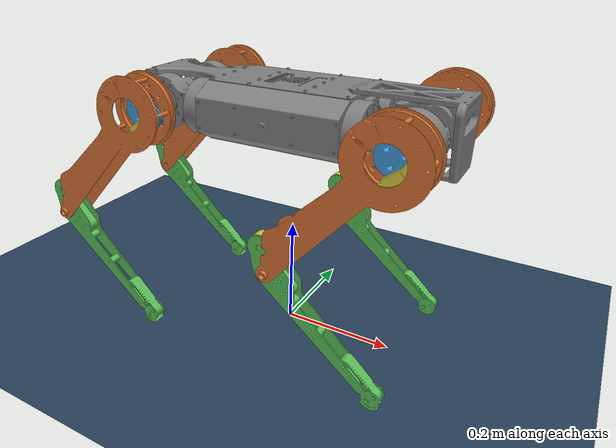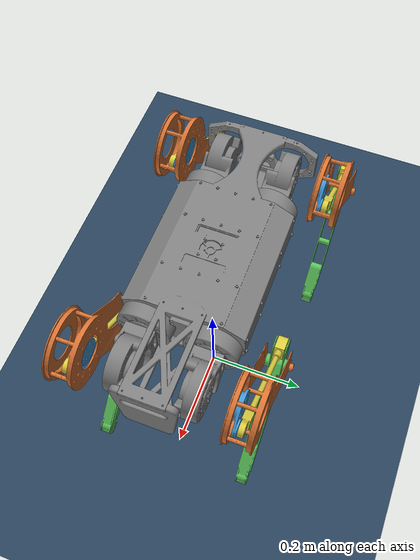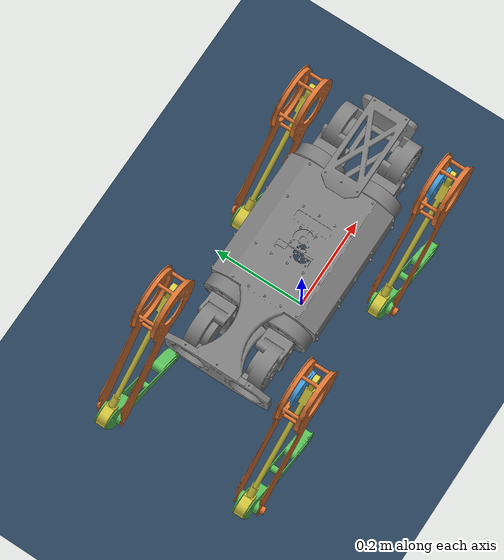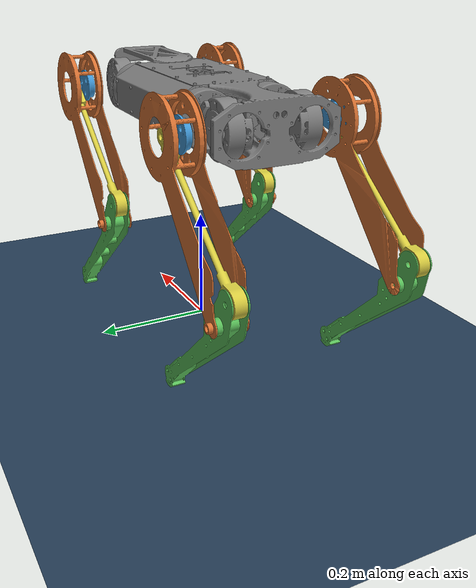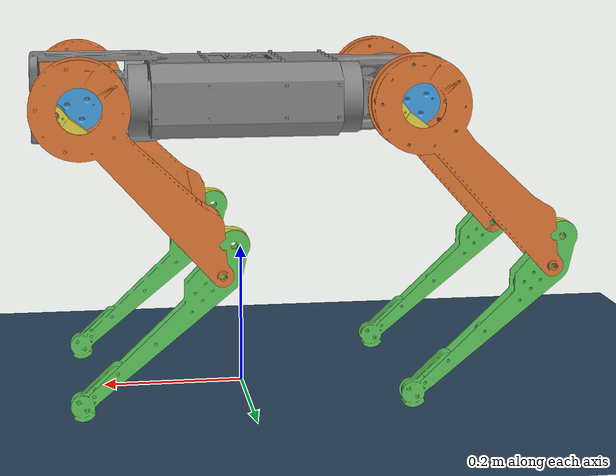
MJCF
<mujoco model="wojtek_mjx_scene">
  <include file="wojtek_mjx.xml"/>
  <statistic center="0 0 0.15" extent="0.8"/>
  <visual>
    <headlight diffuse="0.6 0.6 0.6" ambient="0.3 0.3 0.3" specular="0 0 0"/>
    <global azimuth="120" elevation="-20"/>
  </visual>
  <asset>
    <texture type="skybox" builtin="gradient" rgb1="0.3 0.5 0.7" rgb2="0 0 0" width="512" height="3072"/>
    <texture type="2d" name="groundplane" builtin="checker" mark="edge" rgb1="0.2 0.3 0.4" rgb2="0.1 0.2 0.3" markrgb="0.8 0.8 0.8" width="300" height="300"/>
    <material name="groundplane" texture="groundplane" texuniform="true" texrepeat="5 5" reflectance="0"/>
  </asset>
  <worldbody>
    <geom name="floor" type="plane" size="0 0 0.01" material="groundplane" condim="3" conaffinity="15"/>
    <camera name="track" mode="trackcom" pos="0.9 -1.3 0.5" xyaxes="0.83 0.55 0 -0.15 0.23 0.96"/>
  </worldbody>
</mujoco>

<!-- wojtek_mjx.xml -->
<mujoco model="wojtek_legs_v627">
  <compiler angle="radian" meshdir="../../meshes/"/>

  <option iterations="4" ls_iterations="8"/>

  <size nkey="1"/>

  <default>
    <joint limited="true" armature="0.01" damping="0.3" frictionloss="0.3"/>
    <geom conaffinity="15" condim="4" friction="0.9 0.2 0.2" solref="0.001 2"/>

    <equality solref="0.001 2"/>
    <general ctrllimited="true"/>
    <default class="visual">
      <geom type="mesh" contype="0" conaffinity="0" group="2" density="0" material="grey"/>
    </default>
    <default class="collision">
      <geom type="mesh" group="3"/>
    </default>
  </default>

  <asset>
    <texture type="2d" colorspace="auto" name="grid" builtin="checker" rgb1="0.2 0.3 0.4" rgb2="0.1 0.2 0.3" width="300" height="300"/>
    <material name="grey" rgba="0.5 0.5 0.5 1"/>
    <material name="m_udo" rgba="0.85 0.45 0.2 1"/>
    <material name="m_dzwignia" rgba="0.25 0.6 0.85 1"/>
    <material name="m_wodzik" rgba="0.85 0.8 0.25 1"/>
    <material name="m_golen" rgba="0.35 0.75 0.35 1"/>
    <material name="grid" texture="grid" texrepeat="8 8" reflectance="0.1"/>
    <mesh name="base_link" file="base_link.stl"/>
    <mesh name="first_link" file="first_link.stl"/>
    <mesh name="second_link" file="second_link.stl"/>
    <mesh name="vis_udo_A" file="legs_v627/vis_udo_A.stl"/>
    <mesh name="vis_udo_B" file="legs_v627/vis_udo_B.stl"/>
    <mesh name="vis_dzwignia_A" file="legs_v627/vis_dzwignia_A.stl"/>
    <mesh name="vis_dzwignia_B" file="legs_v627/vis_dzwignia_B.stl"/>
    <mesh name="vis_wodzik_A" file="legs_v627/vis_wodzik_A.stl"/>
    <mesh name="vis_wodzik_B" file="legs_v627/vis_wodzik_B.stl"/>
    <mesh name="vis_golen_A" file="legs_v627/vis_golen_A.stl"/>
    <mesh name="vis_golen_B" file="legs_v627/vis_golen_B.stl"/>
  </asset>

  <worldbody>
    <body name="root" pos="0 0 0.359995">
      <inertial pos="0 0 0" mass="7.54375" diaginertia="0.0223798 0.0789579 0.0887648"/>
      <joint name="root" type="free" armature="0" damping="0" frictionloss="0"/>
      <geom name="base_link_visual" class="visual" pos="0 0 0" quat="0 0 0 1" mesh="base_link"/>
      <geom name="base_link_collision" class="collision" pos="0 0 0" quat="0 0 0 1" contype="0" conaffinity="0" mesh="base_link"/>
      <geom name="rear_left_first_link_visual" class="visual" pos="-0.131 0.06 0.06" quat="0 0 -0.707107 0.707107" mesh="first_link"/>
      <geom name="rear_left_first_link_collision" class="collision" pos="-0.131 0.06 0.06" quat="0 0 -0.707107 0.707107" contype="0" conaffinity="0" mesh="first_link"/>
      <geom name="rear_right_first_link_visual" class="visual" pos="-0.131 -0.06 0.06" quat="0 0 -0.707107 0.707107" mesh="first_link"/>
      <geom name="rear_right_first_link_collision" class="collision" pos="-0.131 -0.06 0.06" quat="0 0 -0.707107 0.707107" contype="0" conaffinity="0" mesh="first_link"/>
      <geom name="front_right_first_link_visual" class="visual" pos="0.131 -0.06 0.06" quat="0.707107 -0.707107 0 0" mesh="first_link"/>
      <geom name="front_right_first_link_collision" class="collision" pos="0.131 -0.06 0.06" quat="0.707107 -0.707107 0 0" contype="0" conaffinity="0" mesh="first_link"/>
      <geom name="front_left_first_link_visual" class="visual" pos="0.131 0.06 0.06" quat="0.707107 -0.707107 0 0" mesh="first_link"/>
      <geom name="front_left_first_link_collision" class="collision" pos="0.131 0.06 0.06" quat="0.707107 -0.707107 0 0" contype="0" conaffinity="0" mesh="first_link"/>
      <geom name="base_box_r0c0" size="0.0278333 0.0261667 0.05" pos="-0.141667 -0.0533333 0" type="box" group="3"/>
      <geom name="base_box_r0c2" size="0.0278333 0.0261667 0.05" pos="-0.0283333 -0.0533333 0" type="box" group="3"/>
      <geom name="base_box_r0c4" size="0.0278333 0.0261667 0.05" pos="0.085 -0.0533333 0" type="box" group="3"/>
      <geom name="base_box_r1c1" size="0.0278333 0.0261667 0.05" pos="-0.085 0 0" type="box" group="3"/>
      <geom name="base_box_r1c3" size="0.0278333 0.0261667 0.05" pos="0.0283333 0 0" type="box" group="3"/>
      <geom name="base_box_r1c5" size="0.0278333 0.0261667 0.05" pos="0.141667 0 0" type="box" group="3"/>
      <geom name="base_box_r2c0" size="0.0278333 0.0261667 0.05" pos="-0.141667 0.0533333 0" type="box" group="3"/>
      <geom name="base_box_r2c2" size="0.0278333 0.0261667 0.05" pos="-0.0283333 0.0533333 0" type="box" group="3"/>
      <geom name="base_box_r2c4" size="0.0278333 0.0261667 0.05" pos="0.085 0.0533333 0" type="box" group="3"/>
      <site name="imu" pos="0 0 0" size="1e-08"/>
      <camera name="ego" pos="0.3 0 0.1" quat="0.541665 0.454532 -0.454532 -0.541665" fovy="100"/>
      <camera name="bench" pos="0.05 0 1.11" quat="-0.5 -0.5 0.5 0.5" fovy="73.74"/>
      <body name="rear_left_second_link" pos="-0.162 0.06 0.06" quat="0 0 0.707107 0.707107">
        <inertial pos="0.055 0 0" quat="0.5 0.5 -0.5 0.5" mass="0.6" diaginertia="0.00075 0.000455 0.000455"/>
        <joint name="rear_left_first_joint" pos="0 0 0" axis="1 0 0" range="-3.1416 3.1416" damping="0.05" frictionloss="0.01"/>
        <geom name="rear_left_second_link_visual" class="visual" mesh="second_link"/>
        <geom name="rear_left_second_link_collision" class="collision" contype="0" conaffinity="0" mesh="second_link"/>
        <geom name="rear_left_second_link_floor" size="0.035" pos="0.055 0 0" contype="2" conaffinity="0" group="3"/>
        <body name="rear_left_third_link" pos="0.064 0 0.0668" quat="-0.904316 0 0 0.426864">
          <inertial pos="0.0394156 0.000858148 0.0250979" quat="-0.00514395 0.703225 0.00750772 0.710909" mass="1.0898" diaginertia="0.00962075 0.00915335 0.00112774"/>
          <joint name="rear_left_second_joint" pos="0 0 0" axis="0 0 -1" ref="-2.25955" range="-2.69479 -1.53589" armature="0.02" damping="0.05" frictionloss="0.2"/>
          <geom name="rear_left_udo_visual" class="visual" material="m_udo" mesh="vis_udo_B"/>
          <geom name="rear_left_third_link_floor" size="0.03 0.144" pos="0.144 0 0.03" quat="0.707107 0 -0.707107 0" type="capsule" contype="2" conaffinity="0" group="3"/>
          <site name="rear_left_P1" pos="0 0 0" size="0.004" group="4"/>
          <body name="rear_left_fourth_link" quat="0.537643 0 0 -0.843173">
            <inertial pos="0.0138922 4.11189e-09 0.0149449" quat="0 0.620173 0 0.784465" mass="0.102018" diaginertia="5.17307e-05 4.64771e-05 1.85064e-05"/>
            <joint name="rear_left_third_joint" pos="0 0 0" axis="0 0 1" ref="-2.00632" range="-2.83267 -0.244346" armature="0.02" damping="0.05" frictionloss="0.2"/>
            <geom name="rear_left_dzwignia_visual" class="visual" material="m_dzwignia" mesh="vis_dzwignia_B"/>
            <body name="rear_left_fifth_link" pos="0.0329881 0 0" quat="0.436064 0 0 0.899916">
              <inertial pos="0.200478 0 0.0255" quat="0 0.707107 0 0.707107" mass="0.07891" diaginertia="0.00115302 0.00114916 7.59801e-06"/>
              <joint name="rear_left_fourth_joint" pos="0 0 0" axis="0 0 -1" ref="-2.23915" limited="false" damping="0.01" frictionloss="0.48"/>
              <geom name="rear_left_wodzik_visual" class="visual" material="m_wodzik" mesh="vis_wodzik_B"/>
              <geom name="rear_left_fifth_link_floor" size="0.012 0.135" pos="0.155 0 0.0255" quat="0.707107 0 -0.707107 0" type="capsule" contype="2" conaffinity="0" group="3"/>
              <site name="rear_left_chain_close_a" pos="0.290953 0 0" group="4"/>
              <body name="rear_left_chain_close_a_link" pos="0.290953 0 0"/>
            </body>
          </body>
          <body name="rear_left_sixth_link" pos="0.288242 0 0" quat="0.521687 0 0 0.853137">
            <inertial pos="-0.0695813 0.0314282 0.0253786" quat="0.597286 0.567265 0.418376 0.382649" mass="0.33083" diaginertia="0.0032533 0.00324266 7.82591e-05"/>
            <joint name="rear_left_fifth_joint" pos="0 0 0" axis="0 0 -1" ref="-2.04394" limited="false" damping="0.01" frictionloss="0"/>
            <geom name="rear_left_golen_visual" class="visual" material="m_golen" mesh="vis_golen_B"/>
            <geom name="rear_left_foot_sphere" size="0.02" pos="-0.237713 0.102244 0.0255" conaffinity="1" group="3"/>
            <geom name="rear_left_sixth_link_floor" size="0.015 0.109969" pos="-0.101 0.0435 0.0255" quat="0.707107 0.279707 0.649434 0" type="capsule" contype="2" conaffinity="0" group="3"/>
            <site name="rear_left_foot" pos="-0.237713 0.102244 0" group="4"/>
            <body name="rear_left_foot_link" pos="0.041823 0 0">
              <inertial pos="0 0 0" mass="0.01" diaginertia="1e-06 1e-06 1e-06"/>
              <joint name="rear_left_foot_joint" pos="0 0 0" axis="0 0 1" limited="false" armature="0.0001" damping="0.01" frictionloss="0"/>
              <site name="rear_left_chain_close_b" pos="0 0 0" group="4"/>
            </body>
          </body>
        </body>
      </body>
      <body name="rear_right_second_link" pos="-0.162 -0.06 0.06" quat="0 0 -0.707107 0.707107">
        <inertial pos="0.055 0 0" quat="0.5 0.5 -0.5 0.5" mass="0.6" diaginertia="0.00075 0.000455 0.000455"/>
        <joint name="rear_right_first_joint" pos="0 0 0" axis="1 0 0" range="-3.1416 3.1416" damping="0.05" frictionloss="0.01"/>
        <geom name="rear_right_second_link_visual" class="visual" mesh="second_link"/>
        <geom name="rear_right_second_link_collision" class="collision" contype="0" conaffinity="0" mesh="second_link"/>
        <geom name="rear_right_second_link_floor" size="0.035" pos="0.055 0 0" contype="2" conaffinity="0" group="3"/>
        <body name="rear_right_third_link" pos="0.064 0 0.0668" quat="0.904316 0 0 0.426864">
          <inertial pos="0.0394156 -0.000858148 0.0250979" quat="0.00514395 0.703225 -0.00750772 0.710909" mass="1.0898" diaginertia="0.00962075 0.00915335 0.00112774"/>
          <joint name="rear_right_second_joint" pos="0 0 0" axis="0 0 1" ref="-2.25955" range="-2.69479 -1.53589" armature="0.02" damping="0.05" frictionloss="0.2"/>
          <geom name="rear_right_udo_visual" class="visual" material="m_udo" mesh="vis_udo_A"/>
          <geom name="rear_right_third_link_floor" size="0.03 0.144" pos="0.144 0 0.03" quat="0.707107 0 -0.707107 0" type="capsule" contype="2" conaffinity="0" group="3"/>
          <site name="rear_right_P1" pos="0 0 0" size="0.004" group="4"/>
          <body name="rear_right_fourth_link" quat="0.537643 0 0 0.843173">
            <inertial pos="0.0138922 -4.11189e-09 0.0149449" quat="0 0.620173 0 0.784465" mass="0.102018" diaginertia="5.17307e-05 4.64771e-05 1.85064e-05"/>
            <joint name="rear_right_third_joint" pos="0 0 0" axis="0 0 -1" ref="-2.00632" range="-2.83267 -0.244346" armature="0.02" damping="0.05" frictionloss="0.2"/>
            <geom name="rear_right_dzwignia_visual" class="visual" material="m_dzwignia" mesh="vis_dzwignia_A"/>
            <body name="rear_right_fifth_link" pos="0.0329881 0 0" quat="0.436064 0 0 -0.899916">
              <inertial pos="0.200478 0 0.0255" quat="0 0.707107 0 0.707107" mass="0.07891" diaginertia="0.00115302 0.00114916 7.59801e-06"/>
              <joint name="rear_right_fourth_joint" pos="0 0 0" axis="0 0 -1" ref="2.23915" limited="false" damping="0.01" frictionloss="0.48"/>
              <geom name="rear_right_wodzik_visual" class="visual" material="m_wodzik" mesh="vis_wodzik_A"/>
              <geom name="rear_right_fifth_link_floor" size="0.012 0.135" pos="0.155 0 0.0255" quat="0.707107 0 -0.707107 0" type="capsule" contype="2" conaffinity="0" group="3"/>
              <site name="rear_right_chain_close_a" pos="0.290953 0 0" group="4"/>
              <body name="rear_right_chain_close_a_link" pos="0.290953 0 0"/>
            </body>
          </body>
          <body name="rear_right_sixth_link" pos="0.288242 0 0" quat="0.521687 0 0 -0.853137">
            <inertial pos="-0.0695813 -0.0314282 0.0253786" quat="0.382649 0.418376 0.567265 0.597286" mass="0.33083" diaginertia="0.0032533 0.00324266 7.82591e-05"/>
            <joint name="rear_right_fifth_joint" pos="0 0 0" axis="0 0 -1" ref="2.04394" limited="false" damping="0.01" frictionloss="0"/>
            <geom name="rear_right_golen_visual" class="visual" material="m_golen" mesh="vis_golen_A"/>
            <geom name="rear_right_foot_sphere" size="0.02" pos="-0.237713 -0.102244 0.0255" conaffinity="1" group="3"/>
            <geom name="rear_right_sixth_link_floor" size="0.015 0.109969" pos="-0.101 -0.0435 0.0255" quat="0.707107 -0.279707 0.649434 0" type="capsule" contype="2" conaffinity="0" group="3"/>
            <site name="rear_right_foot" pos="-0.237713 -0.102244 0" group="4"/>
            <body name="rear_right_foot_link" pos="0.041823 0 0">
              <inertial pos="0 0 0" mass="0.01" diaginertia="1e-06 1e-06 1e-06"/>
              <joint name="rear_right_foot_joint" pos="0 0 0" axis="0 0 1" limited="false" armature="0.0001" damping="0.01" frictionloss="0"/>
              <site name="rear_right_chain_close_b" pos="0 0 0" group="4"/>
            </body>
          </body>
        </body>
      </body>
      <body name="front_right_second_link" pos="0.162 -0.06 0.06" quat="0.707107 0.707107 0 0">
        <inertial pos="0.055 0 0" quat="0.5 0.5 -0.5 0.5" mass="0.6" diaginertia="0.00075 0.000455 0.000455"/>
        <joint name="front_right_first_joint" pos="0 0 0" axis="1 0 0" range="-3.1416 3.1416" damping="0.05" frictionloss="0.01"/>
        <geom name="front_right_second_link_visual" class="visual" mesh="second_link"/>
        <geom name="front_right_second_link_collision" class="collision" contype="0" conaffinity="0" mesh="second_link"/>
        <geom name="front_right_second_link_floor" size="0.035" pos="0.055 0 0" contype="2" conaffinity="0" group="3"/>
        <body name="front_right_third_link" pos="0.064 0 0.0668" quat="0.426864 0 0 -0.904316">
          <inertial pos="0.0394156 -0.000858148 0.0250979" quat="0.00514395 0.703225 -0.00750772 0.710909" mass="1.0898" diaginertia="0.00962075 0.00915335 0.00112774"/>
          <joint name="front_right_second_joint" pos="0 0 0" axis="0 0 -1" ref="2.25955" range="1.53589 2.69479" armature="0.02" damping="0.05" frictionloss="0.2"/>
          <geom name="front_right_udo_visual" class="visual" material="m_udo" mesh="vis_udo_A"/>
          <geom name="front_right_third_link_floor" size="0.03 0.144" pos="0.144 0 0.03" quat="0.707107 0 -0.707107 0" type="capsule" contype="2" conaffinity="0" group="3"/>
          <site name="front_right_P1" pos="0 0 0" size="0.004" group="4"/>
          <body name="front_right_fourth_link" quat="0.537643 0 0 0.843173">
            <inertial pos="0.0138922 -4.11189e-09 0.0149449" quat="0 0.620173 0 0.784465" mass="0.102018" diaginertia="5.17307e-05 4.64771e-05 1.85064e-05"/>
            <joint name="front_right_third_joint" pos="0 0 0" axis="0 0 1" ref="2.00632" range="0.244346 2.83267" armature="0.02" damping="0.05" frictionloss="0.2"/>
            <geom name="front_right_dzwignia_visual" class="visual" material="m_dzwignia" mesh="vis_dzwignia_A"/>
            <body name="front_right_fifth_link" pos="0.0329881 0 0" quat="0.436064 0 0 -0.899916">
              <inertial pos="0.200478 0 0.0255" quat="0 0.707107 0 0.707107" mass="0.07891" diaginertia="0.00115302 0.00114916 7.59801e-06"/>
              <joint name="front_right_fourth_joint" pos="0 0 0" axis="0 0 -1" ref="2.23915" limited="false" damping="0.01" frictionloss="0.48"/>
              <geom name="front_right_wodzik_visual" class="visual" material="m_wodzik" mesh="vis_wodzik_A"/>
              <geom name="front_right_fifth_link_floor" size="0.012 0.135" pos="0.155 0 0.0255" quat="0.707107 0 -0.707107 0" type="capsule" contype="2" conaffinity="0" group="3"/>
              <site name="front_right_chain_close_a" pos="0.290953 0 0" group="4"/>
              <body name="front_right_chain_close_a_link" pos="0.290953 0 0"/>
            </body>
          </body>
          <body name="front_right_sixth_link" pos="0.288242 0 0" quat="0.521687 0 0 -0.853137">
            <inertial pos="-0.0695813 -0.0314282 0.0253786" quat="0.382649 0.418376 0.567265 0.597286" mass="0.33083" diaginertia="0.0032533 0.00324266 7.82591e-05"/>
            <joint name="front_right_fifth_joint" pos="0 0 0" axis="0 0 -1" ref="2.04394" limited="false" damping="0.01" frictionloss="0"/>
            <geom name="front_right_golen_visual" class="visual" material="m_golen" mesh="vis_golen_A"/>
            <geom name="front_right_foot_sphere" size="0.02" pos="-0.237713 -0.102244 0.0255" conaffinity="1" group="3"/>
            <geom name="front_right_sixth_link_floor" size="0.015 0.109969" pos="-0.101 -0.0435 0.0255" quat="0.707107 -0.279707 0.649434 0" type="capsule" contype="2" conaffinity="0" group="3"/>
            <site name="front_right_foot" pos="-0.237713 -0.102244 0" group="4"/>
            <body name="front_right_foot_link" pos="0.041823 0 0">
              <inertial pos="0 0 0" mass="0.01" diaginertia="1e-06 1e-06 1e-06"/>
              <joint name="front_right_foot_joint" pos="0 0 0" axis="0 0 1" limited="false" armature="0.0001" damping="0.01" frictionloss="0"/>
              <site name="front_right_chain_close_b" pos="0 0 0" group="4"/>
            </body>
          </body>
        </body>
      </body>
      <body name="front_left_second_link" pos="0.162 0.06 0.06" quat="0.707107 -0.707107 0 0">
        <inertial pos="0.055 0 0" quat="0.5 0.5 -0.5 0.5" mass="0.6" diaginertia="0.00075 0.000455 0.000455"/>
        <joint name="front_left_first_joint" pos="0 0 0" axis="1 0 0" range="-3.1416 3.1416" damping="0.05" frictionloss="0.01"/>
        <geom name="front_left_second_link_visual" class="visual" mesh="second_link"/>
        <geom name="front_left_second_link_collision" class="collision" contype="0" conaffinity="0" mesh="second_link"/>
        <geom name="front_left_second_link_floor" size="0.035" pos="0.055 0 0" contype="2" conaffinity="0" group="3"/>
        <body name="front_left_third_link" pos="0.064 0 0.0668" quat="0.426864 0 0 0.904316">
          <inertial pos="0.0394156 0.000858148 0.0250979" quat="-0.00514395 0.703225 0.00750772 0.710909" mass="1.0898" diaginertia="0.00962075 0.00915335 0.00112774"/>
          <joint name="front_left_second_joint" pos="0 0 0" axis="0 0 1" ref="2.25955" range="1.53589 2.69479" armature="0.02" damping="0.05" frictionloss="0.2"/>
          <geom name="front_left_udo_visual" class="visual" material="m_udo" mesh="vis_udo_B"/>
          <geom name="front_left_third_link_floor" size="0.03 0.144" pos="0.144 0 0.03" quat="0.707107 0 -0.707107 0" type="capsule" contype="2" conaffinity="0" group="3"/>
          <site name="front_left_P1" pos="0 0 0" size="0.004" group="4"/>
          <body name="front_left_fourth_link" quat="0.537643 0 0 -0.843173">
            <inertial pos="0.0138922 4.11189e-09 0.0149449" quat="0 0.620173 0 0.784465" mass="0.102018" diaginertia="5.17307e-05 4.64771e-05 1.85064e-05"/>
            <joint name="front_left_third_joint" pos="0 0 0" axis="0 0 -1" ref="2.00632" range="0.244346 2.83267" armature="0.02" damping="0.05" frictionloss="0.2"/>
            <geom name="front_left_dzwignia_visual" class="visual" material="m_dzwignia" mesh="vis_dzwignia_B"/>
            <body name="front_left_fifth_link" pos="0.0329881 0 0" quat="0.436064 0 0 0.899916">
              <inertial pos="0.200478 0 0.0255" quat="0 0.707107 0 0.707107" mass="0.07891" diaginertia="0.00115302 0.00114916 7.59801e-06"/>
              <joint name="front_left_fourth_joint" pos="0 0 0" axis="0 0 -1" ref="-2.23915" limited="false" damping="0.01" frictionloss="0.48"/>
              <geom name="front_left_wodzik_visual" class="visual" material="m_wodzik" mesh="vis_wodzik_B"/>
              <geom name="front_left_fifth_link_floor" size="0.012 0.135" pos="0.155 0 0.0255" quat="0.707107 0 -0.707107 0" type="capsule" contype="2" conaffinity="0" group="3"/>
              <site name="front_left_chain_close_a" pos="0.290953 0 0" group="4"/>
              <body name="front_left_chain_close_a_link" pos="0.290953 0 0"/>
            </body>
          </body>
          <body name="front_left_sixth_link" pos="0.288242 0 0" quat="0.521687 0 0 0.853137">
            <inertial pos="-0.0695813 0.0314282 0.0253786" quat="0.597286 0.567265 0.418376 0.382649" mass="0.33083" diaginertia="0.0032533 0.00324266 7.82591e-05"/>
            <joint name="front_left_fifth_joint" pos="0 0 0" axis="0 0 -1" ref="-2.04394" limited="false" damping="0.01" frictionloss="0"/>
            <geom name="front_left_golen_visual" class="visual" material="m_golen" mesh="vis_golen_B"/>
            <geom name="front_left_foot_sphere" size="0.02" pos="-0.237713 0.102244 0.0255" conaffinity="1" group="3"/>
            <geom name="front_left_sixth_link_floor" size="0.015 0.109969" pos="-0.101 0.0435 0.0255" quat="0.707107 0.279707 0.649434 0" type="capsule" contype="2" conaffinity="0" group="3"/>
            <site name="front_left_foot" pos="-0.237713 0.102244 0" group="4"/>
            <body name="front_left_foot_link" pos="0.041823 0 0">
              <inertial pos="0 0 0" mass="0.01" diaginertia="1e-06 1e-06 1e-06"/>
              <joint name="front_left_foot_joint" pos="0 0 0" axis="0 0 1" limited="false" armature="0.0001" damping="0.01" frictionloss="0"/>
              <site name="front_left_chain_close_b" pos="0 0 0" group="4"/>
            </body>
          </body>
        </body>
      </body>
    </body>
  </worldbody>

  <contact>
    <exclude name="ex_rear_left_second_link_root" body1="root" body2="rear_left_second_link"/>
    <exclude name="ex_rear_right_second_link_root" body1="root" body2="rear_right_second_link"/>
    <exclude name="ex_front_right_second_link_root" body1="root" body2="front_right_second_link"/>
    <exclude name="ex_front_left_second_link_root" body1="root" body2="front_left_second_link"/>
    <exclude name="ex_rear_left_fifth_link_sixth_link" body1="rear_left_fifth_link" body2="rear_left_sixth_link"/>
    <exclude name="ex_rear_right_fifth_link_sixth_link" body1="rear_right_fifth_link" body2="rear_right_sixth_link"/>
    <exclude name="ex_front_right_fifth_link_sixth_link" body1="front_right_fifth_link" body2="front_right_sixth_link"/>
    <exclude name="ex_front_left_fifth_link_sixth_link" body1="front_left_fifth_link" body2="front_left_sixth_link"/>
  </contact>

  <equality>
    <connect name="equality_sconstraint_front_left" site1="front_left_chain_close_b" site2="front_left_chain_close_a" solimp="0.99 0.999"/>
    <connect name="equality_sconstraint_front_right" site1="front_right_chain_close_b" site2="front_right_chain_close_a" solimp="0.99 0.999"/>
    <connect name="equality_sconstraint_rear_left" site1="rear_left_chain_close_b" site2="rear_left_chain_close_a" solimp="0.99 0.999"/>
    <connect name="equality_sconstraint_rear_right" site1="rear_right_chain_close_b" site2="rear_right_chain_close_a" solimp="0.99 0.999"/>
  </equality>

  <actuator>
    <general name="rear_left_first_joint" joint="rear_left_first_joint" ctrlrange="-3.1416 3.1416" forcerange="-22 22" biastype="affine" gainprm="60" biasprm="0 -60 -2"/>
    <general name="rear_left_second_joint" joint="rear_left_second_joint" ctrlrange="-2.69479 -1.53589" forcerange="-22 22" biastype="affine" gainprm="60" biasprm="0 -60 -2"/>
    <general name="rear_left_third_joint" joint="rear_left_third_joint" ctrlrange="-2.83267 -0.244346" forcerange="-22 22" biastype="affine" gainprm="60" biasprm="0 -60 -2"/>
    <general name="rear_right_first_joint" joint="rear_right_first_joint" ctrlrange="-3.1416 3.1416" forcerange="-22 22" biastype="affine" gainprm="60" biasprm="0 -60 -2"/>
    <general name="rear_right_second_joint" joint="rear_right_second_joint" ctrlrange="-2.69479 -1.53589" forcerange="-22 22" biastype="affine" gainprm="60" biasprm="0 -60 -2"/>
    <general name="rear_right_third_joint" joint="rear_right_third_joint" ctrlrange="-2.83267 -0.244346" forcerange="-22 22" biastype="affine" gainprm="60" biasprm="0 -60 -2"/>
    <general name="front_right_first_joint" joint="front_right_first_joint" ctrlrange="-3.1416 3.1416" forcerange="-22 22" biastype="affine" gainprm="60" biasprm="0 -60 -2"/>
    <general name="front_right_second_joint" joint="front_right_second_joint" ctrlrange="1.53589 2.69479" forcerange="-22 22" biastype="affine" gainprm="60" biasprm="0 -60 -2"/>
    <general name="front_right_third_joint" joint="front_right_third_joint" ctrlrange="0.244346 2.83267" forcerange="-22 22" biastype="affine" gainprm="60" biasprm="0 -60 -2"/>
    <general name="front_left_first_joint" joint="front_left_first_joint" ctrlrange="-3.1416 3.1416" forcerange="-22 22" biastype="affine" gainprm="60" biasprm="0 -60 -2"/>
    <general name="front_left_second_joint" joint="front_left_second_joint" ctrlrange="1.53589 2.69479" forcerange="-22 22" biastype="affine" gainprm="60" biasprm="0 -60 -2"/>
    <general name="front_left_third_joint" joint="front_left_third_joint" ctrlrange="0.244346 2.83267" forcerange="-22 22" biastype="affine" gainprm="60" biasprm="0 -60 -2"/>
  </actuator>

  <sensor>

    <actuatorpos actuator="rear_left_first_joint" name="rear_left_first_joint_p"/>

    <actuatorvel actuator="rear_left_first_joint" name="rear_left_first_joint_v"/>

    <actuatorfrc actuator="rear_left_first_joint" name="rear_left_first_joint_f" noise="0.001"/>

    <actuatorpos actuator="rear_left_second_joint" name="rear_left_second_joint_p"/>

    <actuatorvel actuator="rear_left_second_joint" name="rear_left_second_joint_v"/>

    <actuatorfrc actuator="rear_left_second_joint" name="rear_left_second_joint_f" noise="0.001"/>

    <actuatorpos actuator="rear_left_third_joint" name="rear_left_third_joint_p"/>

    <actuatorvel actuator="rear_left_third_joint" name="rear_left_third_joint_v"/>

    <actuatorfrc actuator="rear_left_third_joint" name="rear_left_third_joint_f" noise="0.001"/>

    <actuatorpos actuator="rear_right_first_joint" name="rear_right_first_joint_p"/>

    <actuatorvel actuator="rear_right_first_joint" name="rear_right_first_joint_v"/>

    <actuatorfrc actuator="rear_right_first_joint" name="rear_right_first_joint_f" noise="0.001"/>

    <actuatorpos actuator="rear_right_second_joint" name="rear_right_second_joint_p"/>

    <actuatorvel actuator="rear_right_second_joint" name="rear_right_second_joint_v"/>

    <actuatorfrc actuator="rear_right_second_joint" name="rear_right_second_joint_f" noise="0.001"/>

    <actuatorpos actuator="rear_right_third_joint" name="rear_right_third_joint_p"/>

    <actuatorvel actuator="rear_right_third_joint" name="rear_right_third_joint_v"/>

    <actuatorfrc actuator="rear_right_third_joint" name="rear_right_third_joint_f" noise="0.001"/>

    <actuatorpos actuator="front_right_first_joint" name="front_right_first_joint_p"/>

    <actuatorvel actuator="front_right_first_joint" name="front_right_first_joint_v"/>

    <actuatorfrc actuator="front_right_first_joint" name="front_right_first_joint_f" noise="0.001"/>

    <actuatorpos actuator="front_right_second_joint" name="front_right_second_joint_p"/>

    <actuatorvel actuator="front_right_second_joint" name="front_right_second_joint_v"/>

    <actuatorfrc actuator="front_right_second_joint" name="front_right_second_joint_f" noise="0.001"/>

    <actuatorpos actuator="front_right_third_joint" name="front_right_third_joint_p"/>

    <actuatorvel actuator="front_right_third_joint" name="front_right_third_joint_v"/>

    <actuatorfrc actuator="front_right_third_joint" name="front_right_third_joint_f" noise="0.001"/>

    <actuatorpos actuator="front_left_first_joint" name="front_left_first_joint_p"/>

    <actuatorvel actuator="front_left_first_joint" name="front_left_first_joint_v"/>

    <actuatorfrc actuator="front_left_first_joint" name="front_left_first_joint_f" noise="0.001"/>

    <actuatorpos actuator="front_left_second_joint" name="front_left_second_joint_p"/>

    <actuatorvel actuator="front_left_second_joint" name="front_left_second_joint_v"/>

    <actuatorfrc actuator="front_left_second_joint" name="front_left_second_joint_f" noise="0.001"/>

    <actuatorpos actuator="front_left_third_joint" name="front_left_third_joint_p"/>

    <actuatorvel actuator="front_left_third_joint" name="front_left_third_joint_v"/>

    <actuatorfrc actuator="front_left_third_joint" name="front_left_third_joint_f" noise="0.001"/>
    <framequat objtype="site" objname="imu" name="orientation" noise="0.001"/>
    <gyro site="imu" name="angular-velocity" cutoff="34.9" noise="0.005"/>
    <accelerometer site="imu" name="linear-acceleration"/>
    <framelinvel objtype="geom" objname="rear_left_foot_sphere" name="rear_left_foot_linvel"/>
    <framelinvel objtype="geom" objname="rear_right_foot_sphere" name="rear_right_foot_linvel"/>
    <framelinvel objtype="geom" objname="front_right_foot_sphere" name="front_right_foot_linvel"/>
    <framelinvel objtype="geom" objname="front_left_foot_sphere" name="front_left_foot_linvel"/>
  </sensor>

  <keyframe>
    <key name="home" qpos="0 0 0.345934 1 0 0 0 -0.0186536 -2.2224 -1.9316 -2.17111 -1.98844 2.53475e-07 0.0186536 -2.2224 -1.9316 2.17111 1.98844 -2.53475e-07 -0.0100269 2.23666 1.90961 2.15082 1.97585 -9.78131e-08 0.0100269 2.23666 1.90961 -2.15082 -1.97585 9.78131e-08" ctrl="0 -2.25159 -2.03679 0 -2.25159 -2.03679 0 2.2667 1.98216 0 2.2667 1.98216"/>
  </keyframe>
</mujoco>
